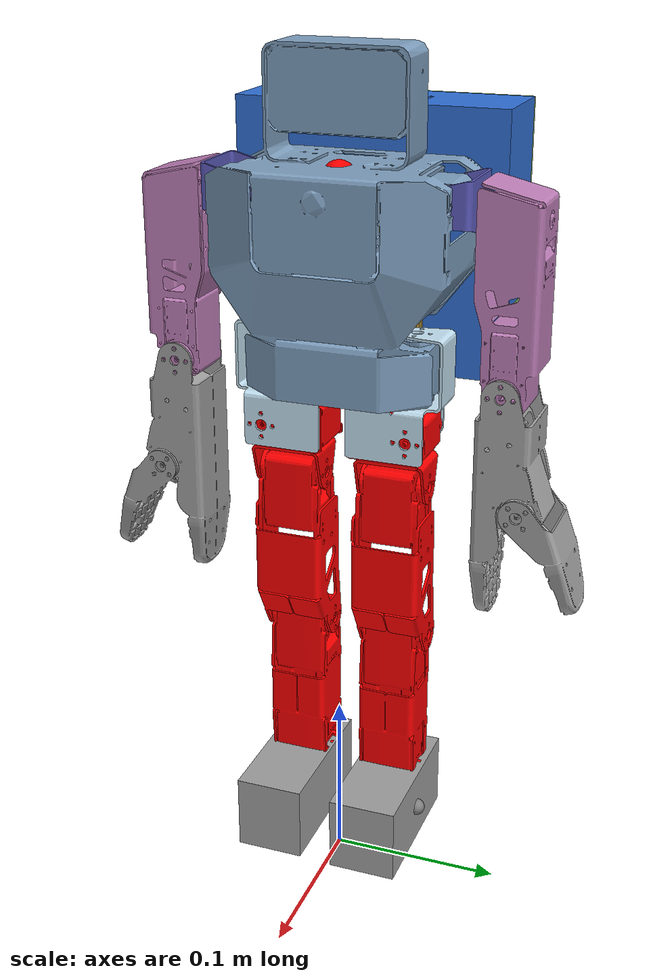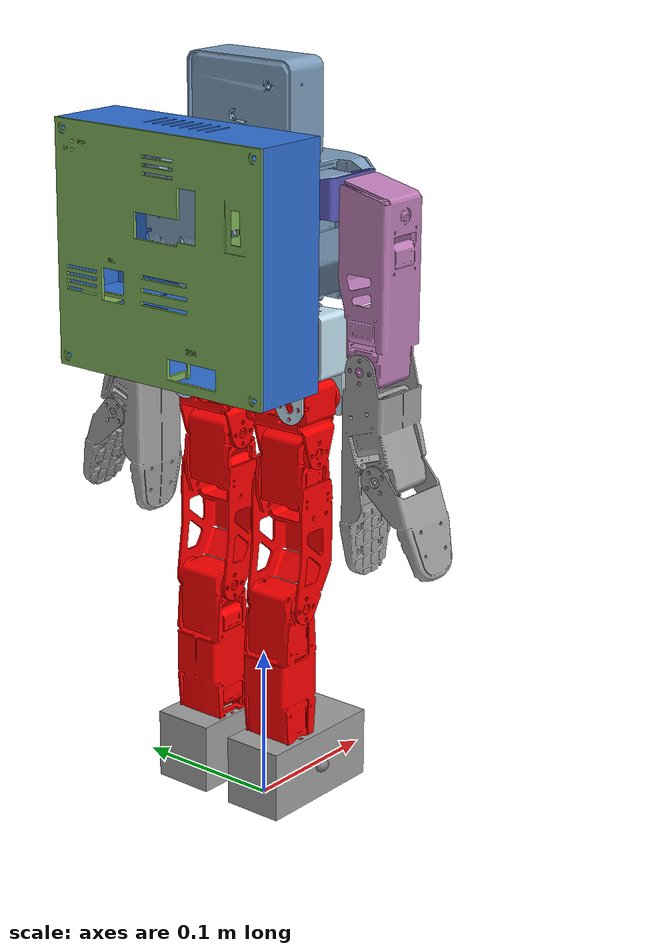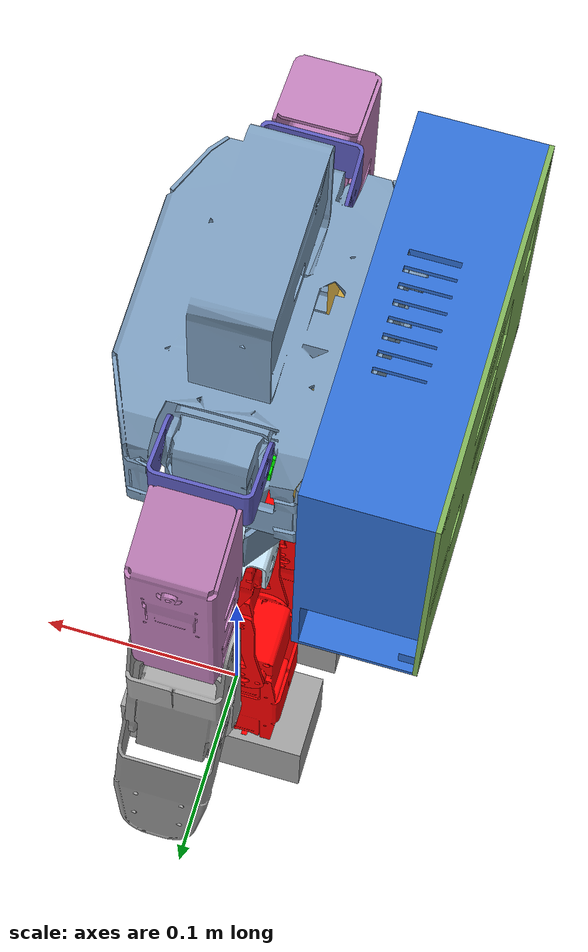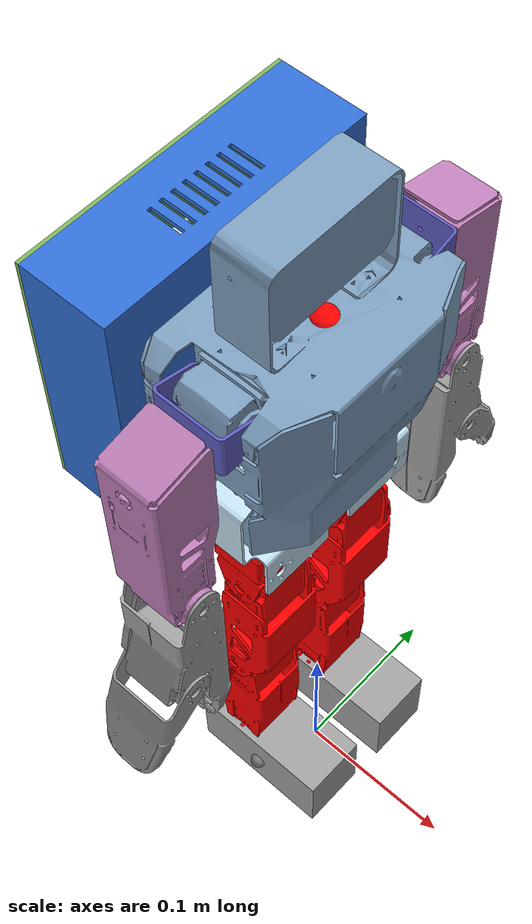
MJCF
<mujoco model="z-bot2_pixel_backpack">
  <!-- GENERATED FILE - do not hand-edit (sim/tools/add_backpack.py on top of zbot-pixel). Source: kscale-assets/zbot-feet@9463049, built by sim/tools/build_model.py -->
  <default>
    <default class="robot">
      <default class="motor">
        <joint />
        <motor />
      </default>
      <default class="visual">
        <geom material="visualgeom" contype="0" conaffinity="0" group="2" />
      </default>
      <default class="collision">
        <geom condim="6" friction="0.8 0.02 0.01" group="3" />
      </default>
    </default>
    <mesh maxhullvert="32" />
  </default>
  <compiler angle="radian" />
  <asset>
    <material name="floating_base_link_material" rgba="1 0 0 1" />
    <material name="Z_BOT2_MASTER_BODY_SKELETON_material" rgba="0.494118 0.623529 0.749020 1" />
    <material name="IMU_material" rgba="0 1 0 1" />
    <material name="Z_BOT2_MASTER_SHOULDER2_material" rgba="0.364706 0.360784 0.749020 1" />
    <material name="U_HIP_L_material" rgba="0.768627 0.886275 0.952941 1" />
    <material name="3215_1Flange_material" rgba="0.749020 0.498039 0.725490 1" />
    <material name="R_ARM_MIRROR_1_material" rgba="0.647059 0.647059 0.647059 1" />
    <material name="L_ARM_MIRROR_1_material" rgba="0.627451 0.627451 0.627451 1" />
    <material name="default_material" rgba="0.7 0.7 0.7 1" />
    <mesh name="Z_BOT2_MASTER_BODY_SKELETON.stl" file="meshes/Z_BOT2_MASTER_BODY_SKELETON.stl" />
    <mesh name="IMU.stl" file="meshes/IMU.stl" />
    <mesh name="Z_BOT2_MASTER_SHOULDER2.stl" file="meshes/Z_BOT2_MASTER_SHOULDER2.stl" />
    <mesh name="3215_1Flange.stl" file="meshes/3215_1Flange.stl" />
    <mesh name="R_ARM_MIRROR_1.stl" file="meshes/R_ARM_MIRROR_1.stl" />
    <mesh name="FINGER_1.stl" file="meshes/FINGER_1.stl" />
    <mesh name="Z_BOT2_MASTER_SHOULDER2_2.stl" file="meshes/Z_BOT2_MASTER_SHOULDER2_2.stl" />
    <mesh name="3215_1Flange_2.stl" file="meshes/3215_1Flange_2.stl" />
    <mesh name="L_ARM_MIRROR_1.stl" file="meshes/L_ARM_MIRROR_1.stl" />
    <mesh name="FINGER_1_2.stl" file="meshes/FINGER_1_2.stl" />
    <mesh name="U_HIP_L.stl" file="meshes/U_HIP_L.stl" />
    <mesh name="3215_BothFlange_5.stl" file="meshes/3215_BothFlange_5.stl" />
    <mesh name="3215_BothFlange_9.stl" file="meshes/3215_BothFlange_9.stl" />
    <mesh name="3215_BothFlange_13.stl" file="meshes/3215_BothFlange_13.stl" />
    <mesh name="FOOT.collision.stl" file="meshes/FOOT.collision.stl" />
    <mesh name="FOOT.stl" file="meshes/FOOT.stl" />
    <mesh name="U_HIP_R.stl" file="meshes/U_HIP_R.stl" />
    <mesh name="3215_BothFlange_6.stl" file="meshes/3215_BothFlange_6.stl" />
    <mesh name="3215_BothFlange_10.stl" file="meshes/3215_BothFlange_10.stl" />
    <mesh name="3215_BothFlange_14.stl" file="meshes/3215_BothFlange_14.stl" />
    <mesh name="FOOT_2.collision.stl" file="meshes/FOOT_2.collision.stl" />
    <mesh name="FOOT_2.stl" file="meshes/FOOT_2.stl" />
    <material name="backpack_base_material" rgba="0.19 0.44 0.84 1" />
    <material name="backpack_lid_material" rgba="0.50 0.70 0.35 1" />
    <material name="backpack_insert_material" rgba="0.78 0.63 0.23 1" />
    <mesh name="backpack_base.stl" file="meshes/backpack_base.stl" scale="0.001 0.001 0.001" />
    <mesh name="backpack_lid.stl" file="meshes/backpack_lid.stl" scale="0.001 0.001 0.001" />
    <mesh name="backpack_insert.stl" file="meshes/backpack_insert.stl" scale="0.001 0.001 0.001" />
  </asset>
  <worldbody>
    <body name="base" pos="0.00000000 0.00000000 0.42181800" childclass="robot">
      <freejoint name="floating_base" />
      <geom name="floating_base_link_visual" quat="0.7073882691671998 0.0 0.0 0.706825181105366" material="floating_base_link_material" type="sphere" size="0.01" class="visual" />
      <body name="Z_BOT2_MASTER_BODY_SKELETON" quat="0.7073882691671998 0.0 0.0 0.706825181105366">
        <inertial pos="-0.000189 0.010193 -0.031201" mass="1.146392" diaginertia="0.003555 0.004044 0.001919" />
        <geom name="Z_BOT2_MASTER_BODY_SKELETON_visual" material="Z_BOT2_MASTER_BODY_SKELETON_material" type="mesh" mesh="Z_BOT2_MASTER_BODY_SKELETON.stl" class="visual" />
        <body name="backpack" pos="0.0000 0.0082 -0.3726">
          <!-- backpack v3.1 (hardware/backpack_v2): 738 g educated guess, CoM/inertia from sim/tools/add_backpack.py -->
          <inertial pos="-0.00922 0.05642 0.31428" mass="0.7380" fullinertia="1.666e-03 2.486e-03 1.423e-03 3.383e-05 -1.613e-04 3.077e-06" />
          <geom name="backpack_base_visual" material="backpack_base_material" type="mesh" mesh="backpack_base.stl" class="visual" />
          <geom name="backpack_lid_visual" material="backpack_lid_material" type="mesh" mesh="backpack_lid.stl" class="visual" />
          <geom name="backpack_insert_visual" material="backpack_insert_material" type="mesh" mesh="backpack_insert.stl" class="visual" />
        </body>
        <body name="IMU_2" pos="0.044470 0.006575 -0.025518" quat="0.5000001633974483 0.4999999999999733 -0.49999983660255165 -0.4999999999999733">
          <inertial pos="-0.010000 -0.007500 -0.001235" mass="0.001887" diaginertia="1e-06 1e-06 1e-06" />
          <geom name="IMU_2_visual" material="IMU_material" type="mesh" mesh="IMU.stl" class="visual" />
          <site name="IMU_2_site" quat="1.0 0.0 0.0 0.0" pos="0.0 0.0 0.0" />
        </body>
        <body name="Z_BOT2_MASTER_SHOULDER2" pos="0.055995 -0.010610 -0.009528" quat="-1.2247452309842457e-07 -1.22474483074382e-07 -0.7071066656470838 -0.7071068967259713">
          <joint name="left_shoulder_yaw" type="hinge" ref="0.0" class="motor" range="-1.047198 0" axis="0 0 1" />
          <inertial pos="-0.012788 0.001374 0.018800" mass="0.024098" diaginertia="7e-06 8e-06 3e-06" />
          <geom name="Z_BOT2_MASTER_SHOULDER2_visual" material="Z_BOT2_MASTER_SHOULDER2_material" type="mesh" mesh="Z_BOT2_MASTER_SHOULDER2.stl" class="visual" />
          <body name="3215_1Flange" pos="-0.020845 -0.004900 0.018800" quat="0.5000001633974483 -0.4999999999999733 0.49999983660255165 -0.4999999999999733">
            <joint name="left_shoulder_pitch" type="hinge" ref="0.0" class="motor" range="-2.967060 3.141593" axis="0 0 1" />
            <inertial pos="0.033642 0.000438 -0.019963" mass="0.181960" diaginertia="5.4e-05 0.000228 0.000232" />
            <geom name="3215_1Flange_visual" material="3215_1Flange_material" type="mesh" mesh="3215_1Flange.stl" class="visual" />
            <body name="R_ARM_MIRROR_1" pos="0.092984 0.019800 -0.018600" quat="-1.2247452309842457e-07 -1.22474483074382e-07 0.7071066656470838 0.7071068967259713">
              <joint name="left_elbow_yaw" type="hinge" ref="0.0" class="motor" range="-1.570796 1.570796" axis="0 0 -1" />
              <inertial pos="-0.051119 0.001150 -0.017743" mass="0.186073" diaginertia="6.1e-05 0.000218 0.000201" />
              <geom name="R_ARM_MIRROR_1_visual" material="R_ARM_MIRROR_1_material" type="mesh" mesh="R_ARM_MIRROR_1.stl" class="visual" />
              <body name="FINGER_1" pos="-0.066206 -0.011778 0.001260" quat="-9.934637848443371e-08 0.5735765089253517 0.8191519934718928 -1.418813056556475e-07">
                <inertial pos="-0.010671 -0.028985 0.018800" mass="0.044318" diaginertia="2.3e-05 1e-05 1.6e-05" />
                <geom name="FINGER_1_visual" material="L_ARM_MIRROR_1_material" type="mesh" mesh="FINGER_1.stl" class="visual" />
              </body>
            </body>
          </body>
        </body>
        <body name="Z_BOT2_MASTER_SHOULDER2_2" pos="-0.055995 -0.010610 -0.009528" quat="0.7071068967259818 -0.7071066656470943 0.0 0.0">
          <joint name="right_shoulder_yaw" type="hinge" ref="0.0" class="motor" range="0 1.047198" axis="0 0 1" />
          <inertial pos="-0.012788 -0.001374 0.018800" mass="0.024098" diaginertia="7e-06 8e-06 3e-06" />
          <geom name="Z_BOT2_MASTER_SHOULDER2_2_visual" material="Z_BOT2_MASTER_SHOULDER2_material" type="mesh" mesh="Z_BOT2_MASTER_SHOULDER2_2.stl" class="visual" />
          <body name="3215_1Flange_2" pos="-0.020845 0.004900 0.018800" quat="0.5000001633974483 0.4999999999999733 0.49999983660255165 0.4999999999999733">
            <joint name="right_shoulder_pitch" type="hinge" ref="0.0" class="motor" range="-3.141593 2.967060" axis="0 0 1" />
            <inertial pos="0.033642 -0.000433 -0.019968" mass="0.181960" diaginertia="5.4e-05 0.000228 0.000232" />
            <geom name="3215_1Flange_2_visual" material="3215_1Flange_material" type="mesh" mesh="3215_1Flange_2.stl" class="visual" />
            <body name="L_ARM_MIRROR_1" pos="0.092984 -0.019800 -0.018600" quat="0.5000001633974483 -0.4999999999999733 -0.4999999999999733 -0.49999983660255165">
              <joint name="right_elbow_yaw" type="hinge" ref="0.0" class="motor" range="-1.570796 1.570796" axis="0 0 1" />
              <inertial pos="0.001144 0.051123 0.017764" mass="0.186073" diaginertia="0.000218 6.1e-05 0.000201" />
              <geom name="L_ARM_MIRROR_1_visual" material="L_ARM_MIRROR_1_material" type="mesh" mesh="L_ARM_MIRROR_1.stl" class="visual" />
              <body name="FINGER_1_2" pos="-0.011778 0.066206 -0.001260" quat="0.9848077400232231 0.0 0.0 0.1736482513311082">
                <inertial pos="-0.010671 0.028985 0.018799" mass="0.044318" diaginertia="2.3e-05 1e-05 1.6e-05" />
                <geom name="FINGER_1_2_visual" material="L_ARM_MIRROR_1_material" type="mesh" mesh="FINGER_1_2.stl" class="visual" />
              </body>
            </body>
          </body>
        </body>
        <body name="U_HIP_L" pos="0.042808 0.007735 -0.083418" quat="3.000000781252362e-14 -1.7320510330969674e-07 0.99999999999997 -1.7320510330969674e-07">
          <joint name="left_hip_yaw" type="hinge" ref="0.0" class="motor" range="-1.047198 1.047198" axis="0 0 1" />
          <inertial pos="-0.001161 -0.004396 0.035396" mass="0.047132" diaginertia="2.9e-05 3e-05 1.9e-05" />
          <geom name="U_HIP_L_visual" material="U_HIP_L_material" type="mesh" mesh="U_HIP_L.stl" class="visual" />
          <body name="3215_BothFlange_5" pos="0 0.017700 0.056400" quat="0.7071068967259818 -0.7071066656470943 0.0 0.0">
            <joint name="left_hip_roll" type="hinge" ref="0.0" class="motor" range="-0.174533 1.570796" axis="0 0 -1.0" />
            <inertial pos="0.012332 -0.008997 -0.018508" mass="0.068295" diaginertia="1.9e-05 2.4e-05 2.5e-05" />
            <geom name="3215_BothFlange_5_visual" material="floating_base_link_material" type="mesh" mesh="3215_BothFlange_5.stl" class="visual" />
            <body name="3215_BothFlange_9" pos="-0.006400 -0.032000 -0.017900" quat="0.5000001633974483 0.4999999999999733 -0.49999983660255165 -0.4999999999999733">
              <joint name="left_hip_pitch" type="hinge" ref="0.0" class="motor" range="-1.570796 1.570796" axis="0 0 1" />
              <inertial pos="0.043662 -0.002857 -0.018525" mass="0.143337" diaginertia="4.9e-05 0.000148 0.000128" />
              <geom name="3215_BothFlange_9_visual" material="floating_base_link_material" type="mesh" mesh="3215_BothFlange_9.stl" class="visual" />
              <body name="3215_BothFlange_13" pos="0.100000 0.010000 -0.001260">
                <joint name="left_knee_pitch" type="hinge" ref="0.0" class="motor" range="-1.221731 2.792527" axis="0 0 1" />
                <inertial pos="0.050000 0 -0.017988" mass="0.128213" diaginertia="3.5e-05 0.000154 0.000145" />
                <geom name="3215_BothFlange_13_visual" material="floating_base_link_material" type="mesh" mesh="3215_BothFlange_13.stl" class="visual" />
                <body name="FOOT" pos="0.100000 0 0.000800" quat="-1.2247452309842457e-07 -0.7071068967259713 -0.7071066656470838 -1.22474483074382e-07">
                  <joint name="left_ankle_pitch" type="hinge" ref="0.0" class="motor" range="-1.570796 1.570796" axis="0 0 1" />
                  <inertial pos="-0.015078 0.027835 0.018700" mass="0.278140" diaginertia="4.5e-05 0.000205 0.000182" />
                  <geom name="FOOT_visual" material="L_ARM_MIRROR_1_material" type="box" class="visual" pos="-0.016064 0.012903 0.018700" quat="1.000000 0.000000 0.000000 0.000000" size="0.044936 0.022697 0.020220" />
                  <geom name="Left_Foot_collision_box" type="box" pos="-0.016064 0.012903 0.018700" quat="1.000000 0.000000 0.000000 0.000000" size="0.044936 0.022697 0.020220" class="collision" />
                  <site name="left_foot" pos="-0.016064 0.012903 -0.001520" size="0.005" />
                </body>
              </body>
            </body>
          </body>
        </body>
        <body name="U_HIP_R" pos="-0.042868 0.007735 -0.083418" quat="3.000000781252362e-14 -1.7320510330969674e-07 0.99999999999997 -1.7320510330969674e-07">
          <joint name="right_hip_yaw" type="hinge" ref="0.0" class="motor" range="-1.047198 1.047198" axis="0 0 1" />
          <inertial pos="0.001161 -0.004396 0.035396" mass="0.047132" diaginertia="2.9e-05 3e-05 1.9e-05" />
          <geom name="U_HIP_R_visual" material="U_HIP_L_material" type="mesh" mesh="U_HIP_R.stl" class="visual" />
          <body name="3215_BothFlange_6" pos="0 -0.017700 0.056400" quat="-1.2247452309842457e-07 1.22474483074382e-07 0.7071066656470838 -0.7071068967259713">
            <joint name="right_hip_roll" type="hinge" ref="0.0" class="motor" range="-1.570796 0.174533" axis="0 0 1" />
            <inertial pos="0.012332 -0.008983 -0.017811" mass="0.068295" diaginertia="1.9e-05 2.4e-05 2.5e-05" />
            <geom name="3215_BothFlange_6_visual" material="floating_base_link_material" type="mesh" mesh="3215_BothFlange_6.stl" class="visual" />
            <body name="3215_BothFlange_10" pos="-0.006400 -0.032000 -0.018900" quat="0.5000001633974483 0.4999999999999733 -0.49999983660255165 -0.4999999999999733">
              <joint name="right_hip_pitch" type="hinge" ref="0.0" class="motor" range="-1.570796 1.570796" axis="0 0 1" />
              <inertial pos="0.043662 0.002863 -0.018537" mass="0.143337" diaginertia="4.9e-05 0.000148 0.000128" />
              <geom name="3215_BothFlange_10_visual" material="floating_base_link_material" type="mesh" mesh="3215_BothFlange_10.stl" class="visual" />
              <body name="3215_BothFlange_14" pos="0.100000 -0.010000 -0.001260">
                <joint name="right_knee_pitch" type="hinge" ref="0.0" class="motor" range="-2.792527 1.221731" axis="0 0 1" />
                <inertial pos="0.050000 0 -0.017888" mass="0.128213" diaginertia="3.6e-05 0.000155 0.000145" />
                <geom name="3215_BothFlange_14_visual" material="floating_base_link_material" type="mesh" mesh="3215_BothFlange_14.stl" class="visual" />
                <body name="FOOT_2" pos="0.100000 0 0.001000" quat="-1.2247452309842457e-07 -0.7071068967259713 0.7071066656470838 1.22474483074382e-07">
                  <joint name="right_ankle_pitch" type="hinge" ref="0.0" class="motor" range="-1.570796 1.570796" axis="0 0 1" />
                  <inertial pos="-0.015078 -0.027835 0.018700" mass="0.278140" diaginertia="4.5e-05 0.000205 0.000182" />
                  <geom name="FOOT_2_visual" material="L_ARM_MIRROR_1_material" type="box" class="visual" pos="-0.016025 -0.012918 0.018700" quat="1.000000 0.000000 0.000000 0.000000" size="0.044975 0.022712 0.020220" />
                  <geom name="Right_Foot_collision_box" type="box" pos="-0.016025 -0.012918 0.018700" quat="1.000000 0.000000 0.000000 0.000000" size="0.044975 0.022712 0.020220" class="collision" />
                  <site name="right_foot" pos="-0.016025 -0.012918 -0.001520" size="0.005" />
                </body>
              </body>
            </body>
          </body>
        </body>
      </body>
      <site name="floating_base_link_site" />
      <camera name="front_camera" mode="track" fovy="90.0" quat="4.329780281177467e-17 4.329780281177466e-17 0.7071067811865475 0.7071067811865476" pos="0.0 2.0 0.5" />
      <camera name="side_camera" mode="track" fovy="90.0" quat="-0.5 -0.4999999999999999 0.5 0.5000000000000001" pos="-2.0 0.0 0.5" />
    </body>
  </worldbody>
  <actuator>
    <motor name="left_shoulder_yaw_ctrl" joint="left_shoulder_yaw" class="motor" />
    <motor name="left_shoulder_pitch_ctrl" joint="left_shoulder_pitch" class="motor" />
    <motor name="left_elbow_yaw_ctrl" joint="left_elbow_yaw" class="motor" />
    <motor name="right_shoulder_yaw_ctrl" joint="right_shoulder_yaw" class="motor" />
    <motor name="right_shoulder_pitch_ctrl" joint="right_shoulder_pitch" class="motor" />
    <motor name="right_elbow_yaw_ctrl" joint="right_elbow_yaw" class="motor" />
    <motor name="left_hip_yaw_ctrl" joint="left_hip_yaw" class="motor" />
    <motor name="left_hip_roll_ctrl" joint="left_hip_roll" class="motor" />
    <motor name="left_hip_pitch_ctrl" joint="left_hip_pitch" class="motor" />
    <motor name="left_knee_pitch_ctrl" joint="left_knee_pitch" class="motor" />
    <motor name="left_ankle_pitch_ctrl" joint="left_ankle_pitch" class="motor" />
    <motor name="right_hip_yaw_ctrl" joint="right_hip_yaw" class="motor" />
    <motor name="right_hip_roll_ctrl" joint="right_hip_roll" class="motor" />
    <motor name="right_hip_pitch_ctrl" joint="right_hip_pitch" class="motor" />
    <motor name="right_knee_pitch_ctrl" joint="right_knee_pitch" class="motor" />
    <motor name="right_ankle_pitch_ctrl" joint="right_ankle_pitch" class="motor" />
  </actuator>
  <contact>
    <pair geom1="Left_Foot_collision_box" geom2="floor" />
    <pair geom1="Right_Foot_collision_box" geom2="floor" />
  </contact>
  <sensor>
    <accelerometer name="imu_acc" site="IMU_2_site" noise="0.01" />
    <gyro name="imu_gyro" site="IMU_2_site" noise="0.01" />
    <magnetometer name="imu_mag" site="IMU_2_site" noise="0.05" />
    <framepos name="base_link_pos" objtype="site" objname="IMU_2_site" />
    <framequat name="base_link_quat" objtype="site" objname="IMU_2_site" />
    <framelinvel name="base_link_vel" objtype="site" objname="IMU_2_site" />
    <frameangvel name="base_link_ang_vel" objtype="site" objname="IMU_2_site" />
    <force name="left_foot_force" site="left_foot" />
    <force name="right_foot_force" site="right_foot" />
  </sensor>
</mujoco>
